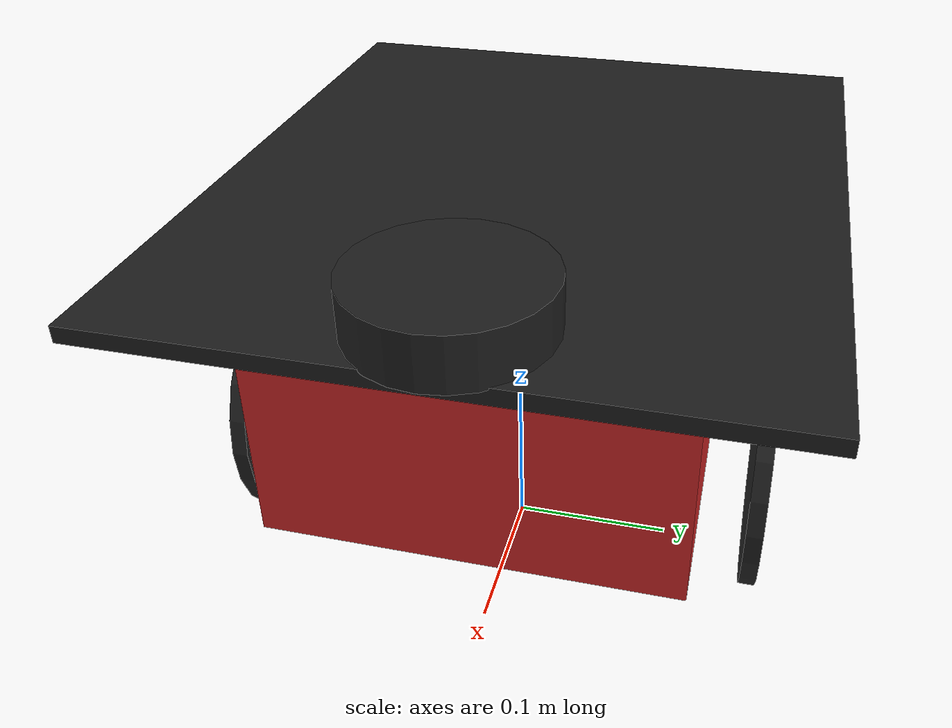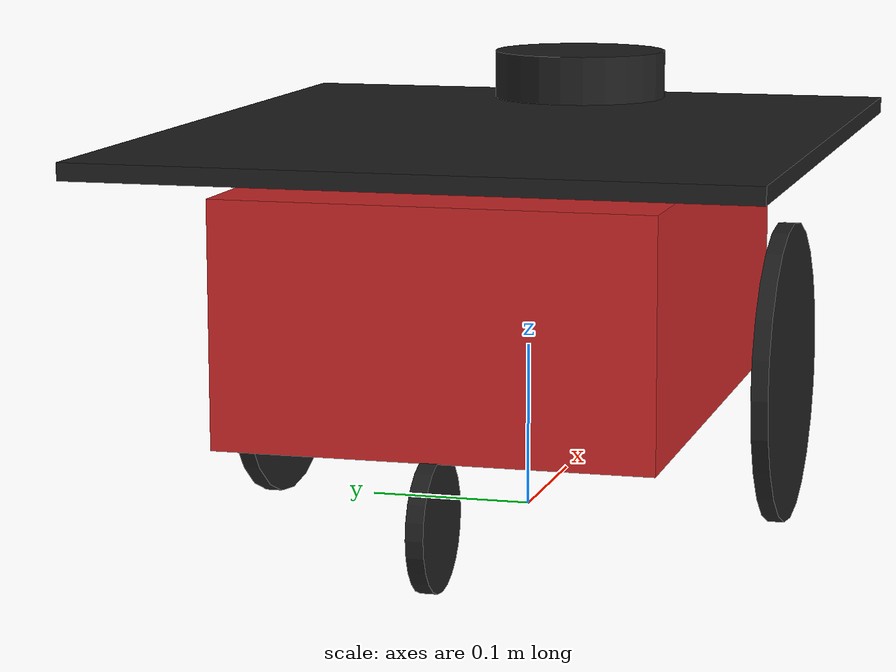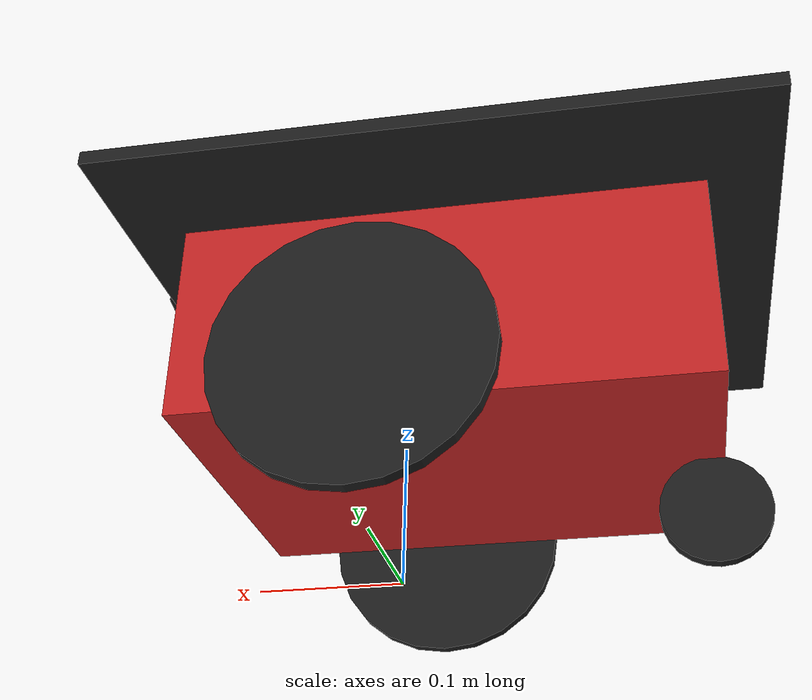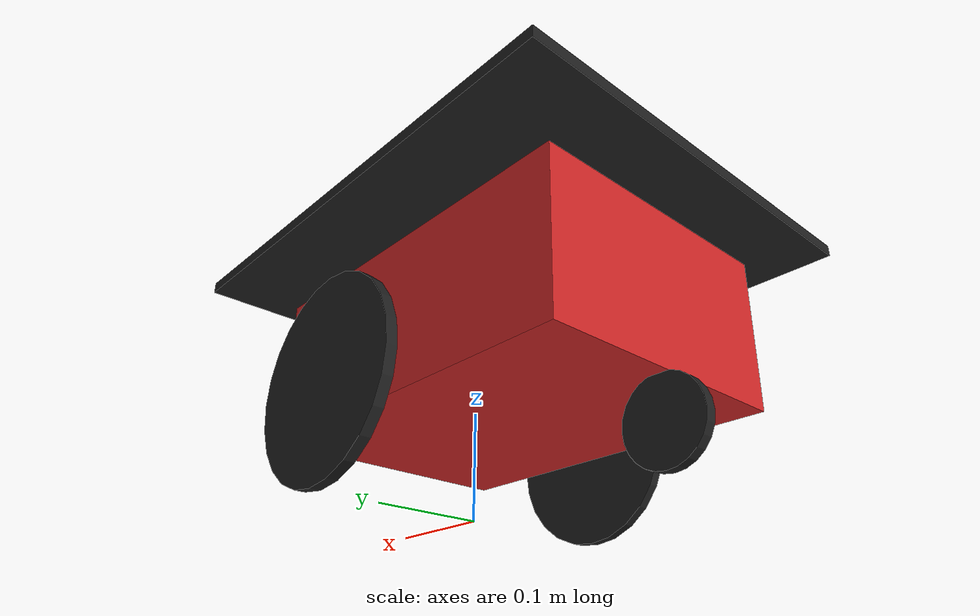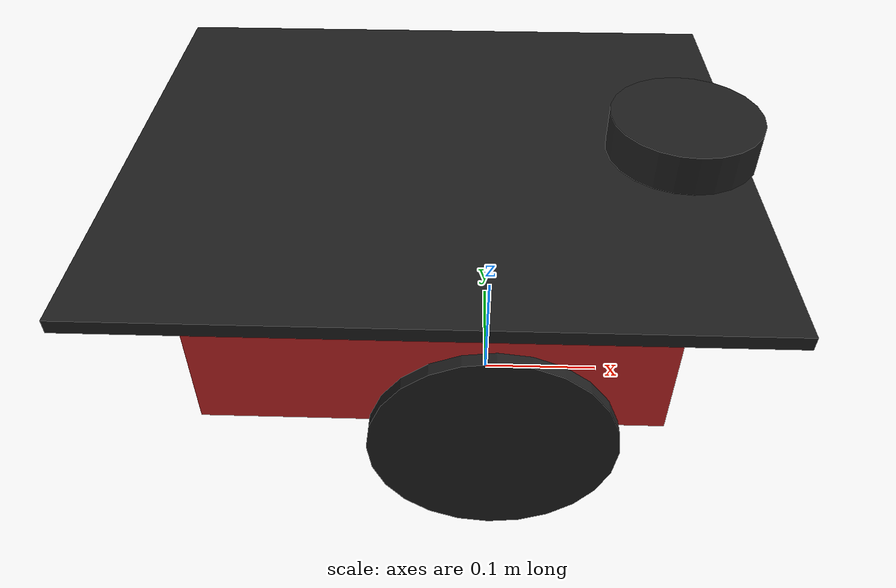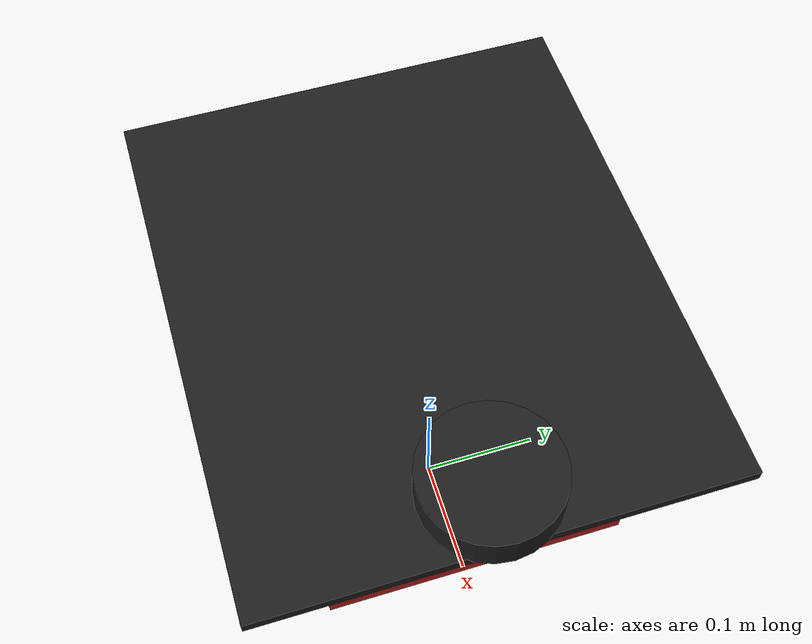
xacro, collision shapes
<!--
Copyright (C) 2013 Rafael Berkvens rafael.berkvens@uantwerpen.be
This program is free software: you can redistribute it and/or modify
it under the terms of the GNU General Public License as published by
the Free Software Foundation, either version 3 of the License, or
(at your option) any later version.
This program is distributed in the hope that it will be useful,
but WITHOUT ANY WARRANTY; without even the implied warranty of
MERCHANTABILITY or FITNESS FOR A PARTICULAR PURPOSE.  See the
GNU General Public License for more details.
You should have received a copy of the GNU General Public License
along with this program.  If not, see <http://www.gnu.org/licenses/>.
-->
<?xml version="1.0"?>
<robot name="pioneer3dx" xmlns:xacro="http://ros.org/wiki/xacro">
    <!-- import the pioneer 3dx's wheels -->
    <xacro:include filename="$(find nu_pioneer3dx)/description/urdf/pioneer3dx_wheel.xacro" />
    <!-- chassis -->
    <link name="base_link">
        <inertial>
            <mass value="3.5" />
            <origin xyz="-0.05 0 0" />
            <inertia ixx="1" ixy="0" ixz="0" iyy="1" iyz="0" izz="1" />
        </inertial>
        <visual>
            <origin xyz="-0.045 0 0.148" rpy="0 0 0" />
            <geometry name="pioneer_geom">
                <mesh filename="package://nu_pioneer3dx/description/meshes/chassis.stl" />
            </geometry>
            <material name="ChassisRed"></material>
        </visual>
        <collision>
            <origin xyz="-0.045 0 0.145" rpy="0 0 0" />
            <geometry>
                <box size="0.35 0.25 0.14" />
            </geometry>
        </collision>
    </link>
    <!-- top_plate -->
    <link name="top_plate">
        <inertial>
            <mass value="0.01" />
            <origin xyz="0 0 0" />
            <inertia ixx="1" ixy="0" ixz="0" iyy="1" iyz="0" izz="1" />
        </inertial>
        <visual>
            <origin xyz="0 0 0" rpy="0 0 0" />
            <geometry name="top_geom">
                <mesh filename="package://nu_pioneer3dx/description/meshes/top.stl" />
            </geometry>
            <material name="TopBlack"></material>
        </visual>
        <collision>
            <origin xyz="0.0 0 0" rpy="0 0 0" />
            <geometry name="pioneer_geom">
                <box size="0.45 0.38 0.01" />
            </geometry>
        </collision>
    </link>
    <joint name="base_top_joint" type="fixed">
        <origin xyz="-0.045 0 0.234" rpy="0 0 0" />
        <parent link="base_link" />
        <child link="top_plate" />
    </joint>
    <!-- swivel -->
    <link name="swivel">
        <inertial>
            <mass value="0.1" />
            <origin xyz="0 0 0" />
            <inertia ixx="0.01" ixy="0" ixz="0" iyy="0.01" iyz="0" izz="0.01" />
        </inertial>
        <visual>
            <origin xyz="0 0 0" rpy="0 0 0" />
            <geometry name="pioneer_geom">
                <mesh filename="package://nu_pioneer3dx/description/meshes/swivel.stl" />
            </geometry>
            <material name="swivel"></material>
        </visual>
        <collision>
            <origin xyz="0 0 0" rpy="0 0 0" />
            <geometry>
                <box size="0.00001 0.00001 0.00001" />
            </geometry>
        </collision>
    </link>
    <joint name="base_swivel_joint" type="fixed">
        <origin xyz="-0.185 0 0.055" rpy="0 0 0" />
        <axis xyz="0 0 1" />
        <anchor xyz="0 0 0" />
        <limit effort="100" velocity="100" k_velocity="0" />
        <joint_properties damping="0.0" friction="0.0" />
        <parent link="base_link" />
        <child link="swivel" />
    </joint>
    <!-- center_hubcap -->
    <link name="center_hubcap">
        <inertial>
            <mass value="0.01" />
            <origin xyz="0 0 0" />
            <inertia ixx="0.012411765597" ixy="-0.000711733678" ixz="0.00050272983" iyy="0.015218160428" iyz="-0.000004273467" izz="0.011763977943" />
        </inertial>
        <visual>
            <origin xyz="0 0 0" rpy="0 0 0" />
            <geometry name="pioneer_geom">
                <mesh filename="package://nu_pioneer3dx/description/meshes/center_hubcap.stl" />
            </geometry>
            <material name="swivel"></material>
        </visual>
        <collision>
            <origin xyz="0 0 0" rpy="0 0 0" />
            <geometry>
                <box size="0.00001 0.00001 0.00001" />
            </geometry>
        </collision>
    </link>
    <joint name="swivel_hubcap_joint" type="fixed">
        <origin xyz="-0.026 0 -0.016" rpy="0 0 0" />
        <axis xyz="0 1 0" />
        <anchor xyz="0 0 0" />
        <limit effort="100" velocity="100" k_velocity="0" />
        <joint_properties damping="0.0" friction="0.0" />
        <parent link="swivel" />
        <child link="center_wheel" />
    </joint>
    <!-- center_wheel -->
    <link name="center_wheel">
        <inertial>
            <mass value="1.0" />
            <origin xyz="0 0 0" />
            <inertia ixx="0.012411765597" ixy="-0.000711733678" ixz="0.00050272983" iyy="0.015218160428" iyz="-0.000004273467" izz="0.011763977943" />
        </inertial>
        <visual>
            <origin xyz="0 0 0" rpy="0 0 0" />
            <geometry name="pioneer_geom">
                <mesh filename="package://nu_pioneer3dx/description/meshes/center_wheel.stl" />
            </geometry>
            <material name="WheelBlack"></material>
        </visual>
        <collision>
            <origin xyz="0 0 0" rpy="${-3.1415927/2.0} 0 0" />
            <geometry>
                <cylinder radius="0.0375" length="0.01" />
            </geometry>
        </collision>
    </link>
    <joint name="center_wheel_joint" type="fixed">
        <origin xyz="-0.0035 0 -0.001" rpy="0 0 0" />
        <parent link="center_wheel" />
        <child link="center_hubcap" />
    </joint>
    <xacro:p3dx_wheel suffix="left" parent="base_link" reflect="-1" />
    <xacro:p3dx_wheel suffix="right" parent="base_link" reflect="1" />
    <!-- front_sonar -->
    <link name="front_sonar">
        <inertial>
            <mass value="0.0001" />
            <origin xyz="0 0 0" />
            <inertia ixx="1" ixy="0" ixz="0" iyy="1" iyz="0" izz="1" />
        </inertial>
        <visual>
            <origin rpy="0 0 0" xyz="0 0 0" />
            <geometry name="pioneer_geom">
                <mesh filename="package://nu_pioneer3dx/description/meshes/front_sonar.stl" />
            </geometry>
            <material name="SonarYellow"></material>
        </visual>
        <collision>
            <origin rpy="0 0 0" xyz="0 0 0" />
            <geometry>
                <box size="0.00001 0.00001 0.00001" />
            </geometry>
        </collision>
    </link>
    <joint name="base_front_joint" type="fixed">
        <origin rpy="0 0 0" xyz="0.109 0 0.209" />
        <parent link="base_link" />
        <child link="front_sonar" />
    </joint>
    <!-- rplidar laser -->
    <link name="rplidar">
        <visual>
            <origin xyz="0 0 0.0" rpy="0 0 0" />
            <geometry>
                <mesh filename="package://nu_pioneer3dx/description/meshes/rplidar/lds.stl" scale="0.001 0.001 0.001" />
            </geometry>
            <material name="Gazebo/Black" />
        </visual>
        <collision>
            <origin xyz="0.015 0 -0.0065" rpy="0 0 0" />
            <geometry>
                <cylinder length="0.0315" radius="0.055" />
            </geometry>
        </collision>
        <inertial>
            <mass value="0.114" />
            <origin xyz="0 0 0" />
            <inertia ixx="0.001" ixy="0.0" ixz="0.0" iyy="0.001" iyz="0.0" izz="0.001" />
        </inertial>
    </link>
    <gazebo reference="base_scan">
        <material value="Gazebo/Black" />
    </gazebo>
    <joint name="rplidar_joint" type="fixed">
        <parent link="base_link" />
        <child link="rplidar" />
        <origin xyz="0.12 0 0.26" rpy="0 0 0" />
    </joint>

    <!-- properties (constants) -->
    <property name="ns" value="p3dx" />
    <!-- ros_control plugin -->
    <gazebo>
        <plugin name="gazebo_ros_control" filename="libgazebo_ros_control.so">
        </plugin>
    </gazebo>
    <!-- base_link -->
    <gazebo reference="base_link">
        <material>Gazebo/Red</material>
    </gazebo>
    <!-- top_plate -->
    <gazebo reference="top_plate">
        <material>Gazebo/Black</material>
    </gazebo>
    <!-- swivel -->
    <gazebo reference="swivel">
        <material>Gazebo/Grey</material>
    </gazebo>
    <!-- center_hubcap -->
    <gazebo reference="center_hubcap">
        <material>Gazebo/Grey</material>
    </gazebo>
    <!-- center_wheel -->
    <gazebo reference="center_wheel">
        <material>Gazebo/Black</material>
        <mu1>0.0</mu1>
        <mu2>0.0</mu2>
        <kp>1000000.0</kp>
        <kd>1.0</kd>
    </gazebo>
    <!-- front_sonar -->
    <gazebo reference="front_sonar">
        <material value="Gazebo/Yellow" />
    </gazebo>
    <!-- differential drive -->
    <gazebo>
        <plugin name="differential_drive_controller" filename="libgazebo_ros_diff_drive.so">
            <alwaysOn>true</alwaysOn>
            <updateRate>100</updateRate>
            <leftJoint>base_right_wheel_joint</leftJoint>
            <rightJoint>base_left_wheel_joint</rightJoint>
            <wheelSeparation>0.314</wheelSeparation>
            <wheelDiameter>0.179</wheelDiameter>
            <torque>5</torque>
            <commandTopic>cmd_vel</commandTopic>
            <odometryTopic>odom</odometryTopic>
            <odometryFrame>odom</odometryFrame>
            <robotBaseFrame>base_link</robotBaseFrame>
            <publishWheelTF>true</publishWheelTF>
            <publishWheelJointState>true</publishWheelJointState>
            <wheelAcceleration>0</wheelAcceleration>
            <wheelTorque>5</wheelTorque>
            <rosDebugLevel>na</rosDebugLevel>
            <publishTf>1</publishTf>
            <legacyMode>false</legacyMode>
        </plugin>
    </gazebo>
    <!-- ground truth -->
    <gazebo>
        <plugin name="p3d_base_controller" filename="libgazebo_ros_p3d.so">
            <alwaysOn>true</alwaysOn>
            <updateRate>30.0</updateRate>
            <bodyName>base_link</bodyName>
            <topicName>base_pose_ground_truth</topicName>
            <gaussianNoise>0.01</gaussianNoise>
            <frameName>map</frameName>
            <!-- initialize odometry for fake localization -->
            <xyzOffsets>0 0 0</xyzOffsets>
            <rpyOffsets>0 0 0</rpyOffsets>
        </plugin>
    </gazebo>
    <!-- rplidar -->
    <gazebo reference="rplidar">
        <material>Gazebo/Black</material>
        <sensor type="ray" name="lds_lfcd_sensor">
            <pose>0 0 0 0 0 0</pose>
            <visualize>false</visualize>
            <update_rate>5</update_rate>
            <ray>
                <scan>
                    <horizontal>
                        <samples>360</samples>
                        <resolution>1</resolution>
                        <min_angle>0.0</min_angle>
                        <max_angle>6.28319</max_angle>
                    </horizontal>
                </scan>
                <range>
                    <min>0.120</min>
                    <max>3.5</max>
                    <resolution>0.015</resolution>
                </range>
                <noise>
                    <type>gaussian</type>
                    <mean>0.0</mean>
                    <stddev>0.01</stddev>
                </noise>
            </ray>
            <plugin name="gazebo_ros_lds_lfcd_controller" filename="libgazebo_ros_laser.so">
                <topicName>scan</topicName>
                <frameName>laser</frameName>
            </plugin>
        </sensor>
    </gazebo>
</robot>

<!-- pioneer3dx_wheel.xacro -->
<robot xmlns:xacro="http://ros.org/wiki/xacro">
	<!-- properties (constants) -->
	<xacro:property name="M_PI" value="3.14159" />
	<!-- right/left hubcap + wheel -->
	<xacro:macro name="p3dx_wheel" params="suffix parent reflect">
		<!-- wheel -->
		<link name="p3dx_${suffix}_wheel">
			<inertial>
				<mass value="0.5" />
				<origin xyz="0 0 0" />
				<inertia ixx="0.012411765597" ixy="0" ixz="0" iyy="0.015218160428" iyz="0" izz="0.011763977943" />
			</inertial>
			<visual>
				<origin xyz="0 0 0" rpy="0 0 0" />
				<geometry name="pioneer_geom">
					<mesh filename="package://nu_pioneer3dx/description/meshes/${suffix}_wheel.stl" />
				</geometry>
				<material name="WheelBlack"></material>
			</visual>
			<collision>
				<origin xyz="0 0 0" rpy="${-3.1415927/2} 0 0" />
				<geometry>
					<cylinder radius="0.09" length="0.01" />
				</geometry>
			</collision>
		</link>
		<joint name="base_${suffix}_hubcap_joint" type="fixed">
			<origin xyz="0 0 0" rpy="0 0 0" />
			<parent link="p3dx_${suffix}_wheel" />
			<child link="p3dx_${suffix}_hubcap" />
		</joint>
		<!-- hubcap -->
		<link name="p3dx_${suffix}_hubcap">
			<inertial>
				<mass value="0.01" />
				<origin xyz="0 0 0" />
				<inertia ixx="0.012411765597" ixy="0" ixz="0" iyy="0.015218160428" iyz="0" izz="0.011763977943" />
			</inertial>
			<visual>
				<origin xyz="0 0 0" rpy="0 0 0" />
				<geometry name="pioneer_geom">
					<mesh filename="package://nu_pioneer3dx/description/meshes/${suffix}_hubcap.stl" />
				</geometry>
				<material name="HubcapYellow"></material>
			</visual>
			<collision>
				<origin xyz="0 0 0" rpy="0 0 0" />
				<geometry>
					<box size="0.00001 0.00001 0.00001" />
				</geometry>
			</collision>
		</link>
		<joint name="base_${suffix}_wheel_joint" type="continuous">
			<axis xyz="0 1 0" />
			<anchor xyz="0 0 0" />
			<limit effort="100" velocity="100" />
			<joint_properties damping="0.0" friction="0.0" />
			<origin xyz="0 ${reflect*0.158} 0.091" rpy="0 0 0" />
			<parent link="base_link" />
			<child link="p3dx_${suffix}_wheel" />
		</joint>
		<!-- gazebo elements -->
		<transmission name="${parent}_${suffix}_wheel_trans">
			<type>pr2_mechanism_model/SimpleTransmission</type>
			<joint name="base_${suffix}_wheel_joint">
				<hardwareInterface>hardware_interface/EffortJointInterface</hardwareInterface>
			</joint>
			<actuator name="base_${suffix}_wheel_motor">
				<hardwareInterface>EffortJointInterface</hardwareInterface>
				<mechanicalReduction>${reflect * 624/35 * 80/19}</mechanicalReduction>
			</actuator>
		</transmission>
		<gazebo reference="p3dx_${suffix}_hubcap">
			<material>Gazebo/Yellow</material>
		</gazebo>
		<gazebo reference="p3dx_${suffix}_wheel">
			<material>Gazebo/Black</material>
			<mu1>0.5</mu1>
			<mu2>50.0</mu2>
			<kp>100000000.0</kp>
			<kd>1.0</kd>
		</gazebo>
	</xacro:macro>
</robot>
